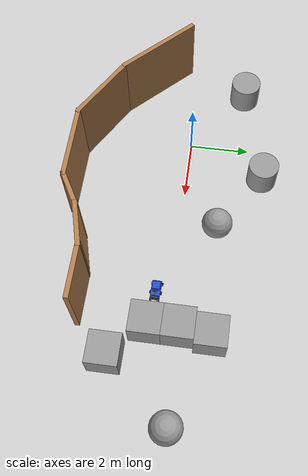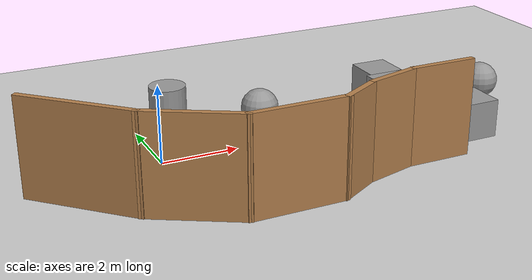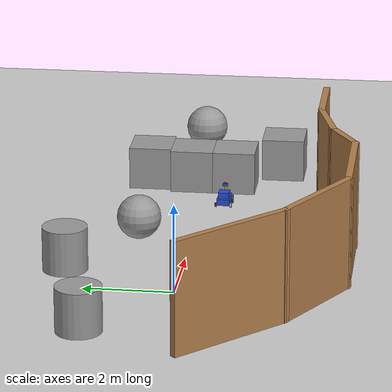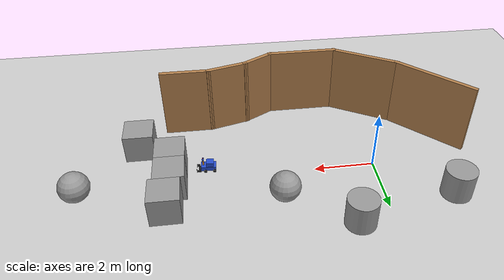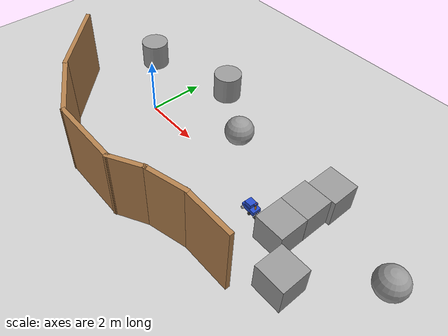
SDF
<sdf version="1.7">
 <world name="default">
  <light name="sun" type="directional">
   <pose>0 0 10 0 -0 0</pose>
   <diffuse>0.8 0.8 0.8 1</diffuse>
   <specular>0.2 0.2 0.2 1</specular>
   <attenuation>
    <range>1000</range>
    <constant>0.9</constant>
    <linear>0.01</linear>
    <quadratic>0.001</quadratic>
   </attenuation>
   <direction>-0.5 0.1 -0.9</direction>
   <spot><inner_angle>0</inner_angle><outer_angle>0</outer_angle><falloff>0</falloff></spot>
  </light>
  <model name="ground_plane">
   <static>1</static>
   <link name="link">
    <collision name="collision">
     <geometry><plane><normal>0 0 1</normal><size>100 100</size></plane></geometry>
     <surface>
      <contact><collide_bitmask>65535</collide_bitmask></contact>
      <friction><ode><mu>100</mu><mu2>50</mu2></ode></friction>
     </surface>
    </collision>
    <visual name="visual">
     <cast_shadows>0</cast_shadows>
     <geometry><plane><normal>0 0 1</normal><size>100 100</size></plane></geometry>
     <material>
      <script><uri>file://media/materials/scripts/gazebo.material</uri><name>Gazebo/Grey</name></script>
     </material>
    </visual>
   </link>
  </model>
  <gravity>0 0 -9.8</gravity>
  <magnetic_field>6e-06 2.3e-05 -4.2e-05</magnetic_field>
  <atmosphere type="adiabatic"/>
  <physics type="ode">
   <max_step_size>0.001</max_step_size>
   <real_time_factor>1</real_time_factor>
   <real_time_update_rate>1000</real_time_update_rate>
  </physics>
  <scene><ambient>0.4 0.4 0.4 1</ambient><background>0.7 0.7 0.7 1</background><shadows>1</shadows></scene>
  <audio><device>default</device></audio>
  <spherical_coordinates>
   <surface_model>EARTH_WGS84</surface_model>
   <latitude_deg>0</latitude_deg>
   <longitude_deg>0</longitude_deg>
   <elevation>0</elevation>
   <heading_deg>0</heading_deg>
  </spherical_coordinates>
  <model name="ros2_ws">
   <link name="base_link">
    <inertial>
     <pose>0.212828 4e-06 0.090281 0 -0 0</pose>
     <mass>13.112</mass>
     <inertia>
      <ixx>0.231664</ixx>
      <ixy>-1.16086e-05</ixy>
      <ixz>0.0239536</ixz>
      <iyy>0.312785</iyy>
      <iyz>2.01407e-06</iyz>
      <izz>0.366143</izz>
     </inertia>
    </inertial>
    <collision name="base_link_fixed_joint_lump__chassis_collision">
     <pose>0.2 0 0.075 0 -0 0</pose>
     <geometry><box><size>0.5 0.3 0.15</size></box></geometry>
    </collision>
    <collision name="base_link_fixed_joint_lump__back_collision_1">
     <pose>0.15 0 0.22 0 -0 0</pose>
     <geometry><box><size>0.25 0.25 0.14</size></box></geometry>
    </collision>
    <collision name="base_link_fixed_joint_lump__laser_framenew_collision_2">
     <pose>0.45 0 0.02 0 -0 0</pose>
     <geometry><cylinder><length>0.01</length><radius>0.01</radius></cylinder></geometry>
    </collision>
    <collision name="base_link_fixed_joint_lump__support_collision_3">
     <pose>0.37 0 0.16 0 -0 0</pose>
     <geometry><cylinder><length>0.02</length><radius>0.025</radius></cylinder></geometry>
    </collision>
    <collision name="base_link_fixed_joint_lump__support1_collision_4">
     <pose>0.37 0 0.26 0 -0 0</pose>
     <geometry><cylinder><length>0.18</length><radius>0.025</radius></cylinder></geometry>
    </collision>
    <collision name="base_link_fixed_joint_lump__box_collision_5">
     <pose>0.37 0 0.38 0 -0 0</pose>
     <geometry><box><size>0.06 0.12 0.06</size></box></geometry>
    </collision>
    <collision name="base_link_fixed_joint_lump__laser_frame_collision_6">
     <pose>0.37 0 0.42 0 -0 0</pose>
     <geometry><cylinder><length>0.02</length><radius>0.02</radius></cylinder></geometry>
    </collision>
    <collision name="base_link_fixed_joint_lump__vc2_collision_7">
     <pose>0.445 0.05 0.05 3.14159 1.57079 3.14159</pose>
     <geometry><cylinder><length>0.015</length><radius>0.03</radius></cylinder></geometry>
    </collision>
    <collision name="base_link_fixed_joint_lump__dum_left_wheel_collision_8">
     <pose>0.3 0.175 0 1.5708 -0 0</pose>
     <geometry><cylinder><length>0.04</length><radius>0.05</radius></cylinder></geometry>
     <surface><friction><ode><mu>0.001</mu><mu2>0.001</mu2></ode></friction></surface>
    </collision>
    <collision name="base_link_fixed_joint_lump__dum_right_wheel_collision_9">
     <pose>0.3 -0.175 0 1.5708 -0 0</pose>
     <geometry><cylinder><length>0.04</length><radius>0.05</radius></cylinder></geometry>
     <surface><friction><ode><mu>0.001</mu><mu2>0.001</mu2></ode></friction></surface>
    </collision>
    <visual name="base_link_fixed_joint_lump__chassis_visual">
     <pose>0.2 0 0.075 0 -0 0</pose>
     <geometry><box><size>0.5 0.3 0.15</size></box></geometry>
     <material>
      <script><name>Gazebo/Blue</name><uri>file://media/materials/scripts/gazebo.material</uri></script>
     </material>
    </visual>
    <visual name="base_link_fixed_joint_lump__back_visual_1">
     <pose>0.15 0 0.22 0 -0 0</pose>
     <geometry><box><size>0.25 0.25 0.14</size></box></geometry>
     <material>
      <script><name>Gazebo/Blue</name><uri>file://media/materials/scripts/gazebo.material</uri></script>
     </material>
    </visual>
    <visual name="base_link_fixed_joint_lump__laser_framenew_visual_2">
     <pose>0.45 0 0.02 0 -0 0</pose>
     <geometry><cylinder><length>0.01</length><radius>0.01</radius></cylinder></geometry>
     <material>
      <script><name>Gazebo/Red</name><uri>file://media/materials/scripts/gazebo.material</uri></script>
     </material>
    </visual>
    <visual name="base_link_fixed_joint_lump__support_visual_3">
     <pose>0.37 0 0.16 0 -0 0</pose>
     <geometry><cylinder><length>0.02</length><radius>0.025</radius></cylinder></geometry>
     <material>
      <script><name>Gazebo/Black</name><uri>file://media/materials/scripts/gazebo.material</uri></script>
     </material>
    </visual>
    <visual name="base_link_fixed_joint_lump__support1_visual_4">
     <pose>0.37 0 0.26 0 -0 0</pose>
     <geometry><cylinder><length>0.18</length><radius>0.025</radius></cylinder></geometry>
     <material>
      <script><name>Gazebo/Orange</name><uri>file://media/materials/scripts/gazebo.material</uri></script>
     </material>
    </visual>
    <visual name="base_link_fixed_joint_lump__box_visual_5">
     <pose>0.37 0 0.38 0 -0 0</pose>
     <geometry><box><size>0.06 0.12 0.06</size></box></geometry>
     <material>
      <script><name>Gazebo/Blue</name><uri>file://media/materials/scripts/gazebo.material</uri></script>
     </material>
    </visual>
    <visual name="base_link_fixed_joint_lump__face_link_visual_6">
     <pose>0.4 0.03 0.39 3.14159 1.57079 3.14159</pose>
     <geometry><cylinder><length>0.002</length><radius>0.01</radius></cylinder></geometry>
     <material>
      <script><name>Gazebo/Black</name><uri>file://media/materials/scripts/gazebo.material</uri></script>
     </material>
    </visual>
    <visual name="base_link_fixed_joint_lump__face_link_visual_7">
     <pose>0.4 -0.03 0.39 3.14159 1.57079 3.14159</pose>
     <geometry><cylinder><length>0.002</length><radius>0.01</radius></cylinder></geometry>
     <material>
      <script><name>Gazebo/Black</name><uri>file://media/materials/scripts/gazebo.material</uri></script>
     </material>
    </visual>
    <visual name="base_link_fixed_joint_lump__laser_frame_visual_8">
     <pose>0.37 0 0.42 0 -0 0</pose>
     <geometry><cylinder><length>0.02</length><radius>0.02</radius></cylinder></geometry>
     <material>
      <script><name>Gazebo/Red</name><uri>file://media/materials/scripts/gazebo.material</uri></script>
     </material>
    </visual>
    <visual name="base_link_fixed_joint_lump__camera_link_visual_9">
     <pose>0.37 0 0.43 0 -0 0</pose>
     <geometry><box><size>1e-05 1e-05 1e-05</size></box></geometry>
     <material>
      <script><name>Gazebo/Red</name><uri>file://media/materials/scripts/gazebo.material</uri></script>
     </material>
    </visual>
    <visual name="base_link_fixed_joint_lump__vc2_visual_10">
     <pose>0.445 0.05 0.05 3.14159 1.57079 3.14159</pose>
     <geometry><cylinder><length>0.015</length><radius>0.03</radius></cylinder></geometry>
     <material>
      <script><name>Gazebo/Black</name><uri>file://media/materials/scripts/gazebo.material</uri></script>
     </material>
    </visual>
    <visual name="base_link_fixed_joint_lump__dum_left_wheel_visual_11">
     <pose>0.3 0.175 0 1.5708 -0 0</pose>
     <geometry><cylinder><length>0.04</length><radius>0.05</radius></cylinder></geometry>
     <material>
      <script><name>Gazebo/Black</name><uri>file://media/materials/scripts/gazebo.material</uri></script>
     </material>
    </visual>
    <visual name="base_link_fixed_joint_lump__dum_right_wheel_visual_12">
     <pose>0.3 -0.175 0 1.5708 -0 0</pose>
     <geometry><cylinder><length>0.04</length><radius>0.05</radius></cylinder></geometry>
     <material>
      <script><name>Gazebo/Black</name><uri>file://media/materials/scripts/gazebo.material</uri></script>
     </material>
    </visual>
    <sensor name="laser" type="ray">
     <visualize>1</visualize>
     <update_rate>4</update_rate>
     <ray>
      <scan>
       <horizontal>
        <samples>10</samples>
        <min_angle>0</min_angle>
        <max_angle>0.1</max_angle>
        <resolution>1</resolution>
       </horizontal>
       <vertical><samples>1</samples><min_angle>0</min_angle><max_angle>0</max_angle></vertical>
      </scan>
      <range><min>0.15</min><max>12</max></range>
     </ray>
     <plugin name="laser_controller" filename="libgazebo_ros_ray_sensor.so">
      <ros><argument>~/out:=scan</argument></ros>
      <output_type>sensor_msgs/LaserScan</output_type>
      <frame_name>laser_frame</frame_name>
     </plugin>
     <pose>0.45 0 0.02 0 -0 0</pose>
    </sensor>
    <sensor name="camera1" type="multicamera">
     <update_rate>60</update_rate>
     <visualize>1</visualize>
     <camera name="left">
      <horizontal_fov>1.39626</horizontal_fov>
      <image><width>640</width><height>480</height><format>R8G8B8</format></image>
      <clip><near>0.02</near><far>300</far></clip>
      <noise><type>gaussian</type><mean>0</mean><stddev>0.007</stddev></noise>
     </camera>
     <camera name="right">
      <pose>0 0.4 0 0 -0 0</pose>
      <horizontal_fov>0.7</horizontal_fov>
      <image><width>320</width><height>480</height><format>R8G8B8</format></image>
      <clip><near>0.02</near><far>300</far></clip>
      <noise><type>gaussian</type><mean>0</mean><stddev>0.007</stddev></noise>
     </camera>
     <plugin name="camera_controller" filename="libgazebo_ros_camera.so">
      <ros>
       <namespace>demo_cam</namespace>
       <remapping>mycamera/left/image_raw:=mycamera/left/image_demo</remapping>
       <remapping>mycamera/right/image_raw:=mycamera/right/image_demo</remapping>
       <remapping>mycamera/left/camera_info:=mycamera/left/camera_info_demo</remapping>
       <remapping>mycamera/right/camera_info:=mycamera/right/camera_info_demo</remapping>
      </ros>
      <camera_name>mycamera</camera_name>
     </plugin>
     <pose>0.37 0 0.43 0 -0 0</pose>
    </sensor>
    <sensor name="camera" type="depth">
     <visualize>1</visualize>
     <update_rate>10</update_rate>
     <camera>
      <horizontal_fov>1.089</horizontal_fov>
      <image><format>B8G8R8</format><width>640</width><height>480</height></image>
      <clip><near>0.05</near><far>8</far></clip>
     </camera>
     <plugin name="camera_controller" filename="libgazebo_ros_camera.so">
      <frame_name>camera_link_optical</frame_name>
      <min_depth>0.1</min_depth>
      <max_depth>100.0</max_depth>
     </plugin>
     <pose>0.37 0 0.43 0 -0 0</pose>
    </sensor>
   </link>
   <joint name="lift_joint" type="prismatic">
    <pose relative_to="base_link">0.34 0 -0.0449 0 -0 0</pose>
    <parent>base_link</parent>
    <child>lift</child>
    <axis>
     <xyz>0 0 1</xyz>
     <limit><lower>0</lower><upper>0.11</upper><effort>100</effort><velocity>100</velocity></limit>
     <dynamics><spring_reference>0</spring_reference><spring_stiffness>0</spring_stiffness></dynamics>
    </axis>
   </joint>
   <link name="lift">
    <pose relative_to="lift_joint">0 0 0 0 -0 0</pose>
    <inertial>
     <pose>0.15 0 0.002 0 -0 0</pose>
     <mass>0.1</mass>
     <inertia>
      <ixx>0.000750208</ixx>
      <ixy>0</ixy>
      <ixz>0</ixz>
      <iyy>5.35417e-05</iyy>
      <iyz>0</iyz>
      <izz>0.000803333</izz>
     </inertia>
    </inertial>
    <collision name="lift_collision">
     <pose>0.15 0 0.005 0 -0 0</pose>
     <geometry><box><size>0.08 0.3 1e-05</size></box></geometry>
     <surface><friction><ode><mu>1e-05</mu><mu2>1e-05</mu2></ode></friction></surface>
    </collision>
    <visual name="lift_visual">
     <pose>0.15 0 0.002 0 -0 0</pose>
     <geometry><box><size>0.08 0.3 0.005</size></box></geometry>
     <material>
      <script><name>Gazebo/Black</name><uri>file://media/materials/scripts/gazebo.material</uri></script>
     </material>
    </visual>
   </link>
   <joint name="forkone_joint" type="prismatic">
    <pose relative_to="lift">0.05 -0.15 0.05 0 -0 0</pose>
    <parent>lift</parent>
    <child>forkone</child>
    <axis>
     <xyz>0 1 0</xyz>
     <limit><lower>0</lower><upper>0.085</upper><effort>1000</effort><velocity>10</velocity></limit>
     <dynamics><spring_reference>0</spring_reference><spring_stiffness>0</spring_stiffness></dynamics>
    </axis>
   </joint>
   <link name="forkone">
    <pose relative_to="forkone_joint">0 0 0 0 -0 0</pose>
    <inertial>
     <pose>0.175 0.0125 0.001 0 -0 0</pose>
     <mass>0.2</mass>
     <inertia>
      <ixx>0.00022895</ixx>
      <ixy>-6.25e-05</ixy>
      <ixz>5e-06</ixz>
      <iyy>0.000376033</iyy>
      <iyz>2.5e-06</iyz>
      <izz>0.00027125</izz>
     </inertia>
    </inertial>
    <collision name="forkone_collision">
     <pose>0.15 0 0.002 0 -0 0</pose>
     <geometry><box><size>0.1 0.01 0.1</size></box></geometry>
     <surface><friction><ode><mu>0.10001</mu><mu2>0.10001</mu2></ode></friction></surface>
    </collision>
    <collision name="forkone_fixed_joint_lump__cap1_collision_1">
     <pose>0.2 0.025 0 0 -0 0</pose>
     <geometry><box><size>0.01 0.06 0.1</size></box></geometry>
    </collision>
    <visual name="forkone_visual">
     <pose>0.15 0 0.002 0 -0 0</pose>
     <geometry><box><size>0.1 0.01 0.1</size></box></geometry>
     <material>
      <script><name>Gazebo/Black</name><uri>file://media/materials/scripts/gazebo.material</uri></script>
     </material>
    </visual>
    <visual name="forkone_fixed_joint_lump__cap1_visual_1">
     <pose>0.2 0.025 0 0 -0 0</pose>
     <geometry><box><size>0.01 0.06 0.1</size></box></geometry>
     <material>
      <script><name>Gazebo/Black</name><uri>file://media/materials/scripts/gazebo.material</uri></script>
     </material>
    </visual>
   </link>
   <joint name="forktwo_joint" type="prismatic">
    <pose relative_to="lift">0.05 0.15 0.05 0 -0 0</pose>
    <parent>lift</parent>
    <child>forktwo</child>
    <axis>
     <xyz>0 -1 0</xyz>
     <limit><lower>0</lower><upper>0.085</upper><effort>1000</effort><velocity>10</velocity></limit>
     <dynamics><spring_reference>0</spring_reference><spring_stiffness>0</spring_stiffness></dynamics>
    </axis>
   </joint>
   <link name="forktwo">
    <pose relative_to="forktwo_joint">0 0 0 0 -0 0</pose>
    <inertial>
     <pose>0.175 -0.0125 0.001 0 -0 0</pose>
     <mass>0.2</mass>
     <inertia>
      <ixx>0.000219783</ixx>
      <ixy>6.25e-05</ixy>
      <ixz>5e-06</ixz>
      <iyy>0.000376033</iyy>
      <iyz>-2.5e-06</iyz>
      <izz>0.000262083</izz>
     </inertia>
    </inertial>
    <collision name="forktwo_collision">
     <pose>0.15 0 0.002 0 -0 0</pose>
     <geometry><box><size>0.1 0.01 0.1</size></box></geometry>
     <surface><friction><ode><mu>0.10001</mu><mu2>0.10001</mu2></ode></friction></surface>
    </collision>
    <collision name="forktwo_fixed_joint_lump__cap_collision_1">
     <pose>0.2 -0.025 0 0 -0 0</pose>
     <geometry><box><size>0.01 0.06 0.1</size></box></geometry>
    </collision>
    <visual name="forktwo_visual">
     <pose>0.15 0 0.002 0 -0 0</pose>
     <geometry><box><size>0.1 0.01 0.1</size></box></geometry>
     <material>
      <script><name>Gazebo/Black</name><uri>file://media/materials/scripts/gazebo.material</uri></script>
     </material>
    </visual>
    <visual name="forktwo_fixed_joint_lump__cap_visual_1">
     <pose>0.2 -0.025 0 0 -0 0</pose>
     <geometry><box><size>0.01 0.06 0.1</size></box></geometry>
     <material>
      <script><name>Gazebo/Black</name><uri>file://media/materials/scripts/gazebo.material</uri></script>
     </material>
    </visual>
   </link>
   <joint name="vc1_joint" type="prismatic">
    <pose relative_to="base_link">0.445 -0.05 0.05 3.14159 1.57079 3.14159</pose>
    <parent>base_link</parent>
    <child>vc1</child>
    <axis>
     <xyz>0 1 0</xyz>
     <limit><lower>0</lower><upper>0</upper><effort>100</effort><velocity>10</velocity></limit>
     <dynamics><spring_reference>0</spring_reference><spring_stiffness>0</spring_stiffness></dynamics>
    </axis>
   </joint>
   <link name="vc1">
    <pose relative_to="vc1_joint">0 0 0 0 -0 0</pose>
    <inertial>
     <mass>0.001</mass>
     <inertia>
      <ixx>2.4375e-07</ixx>
      <ixy>0</ixy>
      <ixz>0</ixz>
      <iyy>2.4375e-07</iyy>
      <iyz>0</iyz>
      <izz>4.5e-07</izz>
     </inertia>
    </inertial>
    <collision name="vc1_collision">
     <geometry><cylinder><length>0.015</length><radius>0.03</radius></cylinder></geometry>
    </collision>
    <visual name="vc1_visual">
     <geometry><cylinder><length>0.015</length><radius>0.03</radius></cylinder></geometry>
     <material>
      <script><name>Gazebo/Black</name><uri>file://media/materials/scripts/gazebo.material</uri></script>
     </material>
    </visual>
   </link>
   <joint name="left_wheel_joint" type="revolute">
    <pose relative_to="base_link">0 0.175 0 -1.5708 0 0</pose>
    <parent>base_link</parent>
    <child>left_wheel</child>
    <axis>
     <xyz>0 0 1</xyz>
     <limit><lower>-1e+16</lower><upper>1e+16</upper></limit>
     <dynamics><spring_reference>0</spring_reference><spring_stiffness>0</spring_stiffness></dynamics>
    </axis>
   </joint>
   <link name="left_wheel">
    <pose relative_to="left_wheel_joint">0 0 0 0 -0 0</pose>
    <inertial>
     <mass>1.1</mass>
     <inertia>
      <ixx>0.000834167</ixx>
      <ixy>0</ixy>
      <ixz>0</ixz>
      <iyy>0.000834167</iyy>
      <iyz>0</iyz>
      <izz>0.001375</izz>
     </inertia>
    </inertial>
    <collision name="left_wheel_collision">
     <geometry><cylinder><length>0.04</length><radius>0.05</radius></cylinder></geometry>
    </collision>
    <visual name="left_wheel_visual">
     <geometry><cylinder><length>0.04</length><radius>0.05</radius></cylinder></geometry>
     <material>
      <script><name>Gazebo/Black</name><uri>file://media/materials/scripts/gazebo.material</uri></script>
     </material>
    </visual>
   </link>
   <joint name="right_wheel_joint" type="revolute">
    <pose relative_to="base_link">0 -0.175 0 1.5708 -0 0</pose>
    <parent>base_link</parent>
    <child>right_wheel</child>
    <axis>
     <xyz>0 0 -1</xyz>
     <limit><lower>-1e+16</lower><upper>1e+16</upper></limit>
     <dynamics><spring_reference>0</spring_reference><spring_stiffness>0</spring_stiffness></dynamics>
    </axis>
   </joint>
   <link name="right_wheel">
    <pose relative_to="right_wheel_joint">0 0 0 0 -0 0</pose>
    <inertial>
     <mass>1.1</mass>
     <inertia>
      <ixx>0.00190667</ixx>
      <ixy>0</ixy>
      <ixz>0</ixz>
      <iyy>0.00190667</iyy>
      <iyz>0</iyz>
      <izz>0.00352</izz>
     </inertia>
    </inertial>
    <collision name="right_wheel_collision">
     <geometry><cylinder><length>0.04</length><radius>0.05</radius></cylinder></geometry>
    </collision>
    <visual name="right_wheel_visual">
     <geometry><cylinder><length>0.04</length><radius>0.05</radius></cylinder></geometry>
    </visual>
   </link>
   <plugin name="gazebo_ros_joint_pose_trajectory" filename="libgazebo_ros_joint_pose_trajectory.so">
    <ros><namespace>/vision</namespace><remapping>set_joint_trajectory:=set_trajectory_demo</remapping></ros>
    <update_rate>2</update_rate>
   </plugin>
   <plugin name="vacuum_gripper" filename="libgazebo_ros_vacuum_gripper.so">
    <ros>
     <namespace>/demo</namespace>
     <remapping>switch:=switch_demo</remapping>
     <remapping>grasping:=grasping_demo</remapping>
    </ros>
    <link_name>vc1</link_name>
    <max_distance>0.8</max_distance>
    <fixed>base_link</fixed>
   </plugin>
   <plugin name="vacuum_gripper" filename="libgazebo_ros_vacuum_gripper.so">
    <ros>
     <namespace>/demo1</namespace>
     <remapping>switch:=switch_demo</remapping>
     <remapping>grasping:=grasping_demo</remapping>
    </ros>
    <link_name>vc2</link_name>
    <max_distance>0.8</max_distance>
    <fixed>base_link</fixed>
   </plugin>
   <plugin name="vacuum_gripper" filename="libgazebo_ros_vacuum_gripper.so">
    <ros>
     <namespace>/fork</namespace>
     <remapping>switch:=switch_demo</remapping>
     <remapping>grasping:=grasping_demo</remapping>
    </ros>
    <link_name>forkone</link_name>
    <max_distance>0.1</max_distance>
    <fixed>base_link</fixed>
   </plugin>
   <static>0</static>
   <plugin name="gazebo_ros2_control" filename="libgazebo_ros2_control.so">
    <parameters>/home/dhanush/Desktop/ros2_ws/install/vision/share/vision/config/my_controllers.yaml</parameters>
   </plugin>
   <pose>5.35873 -0.472058 0.05 -0 1e-06 -0.043345</pose>
  </model>
  <model name="Untitled">
   <pose>1.79299 -1.87135 0 0 -0 0</pose>
   <link name="Wall_10">
    <collision name="Wall_10_Collision">
     <geometry><box><size>1.25 0.15 2.5</size></box></geometry>
     <pose>0 0 1.25 0 -0 0</pose>
    </collision>
    <visual name="Wall_10_Visual">
     <pose>0 0 1.25 0 -0 0</pose>
     <geometry><box><size>1.25 0.15 2.5</size></box></geometry>
     <material>
      <script><uri>file://media/materials/scripts/gazebo.material</uri><name>Gazebo/Wood</name></script>
      <ambient>1 1 1 1</ambient>
     </material>
     <meta><layer>0</layer></meta>
    </visual>
    <pose>1.76374 -1.4939 0 0 -0 0.523599</pose>
   </link>
   <link name="Wall_11">
    <collision name="Wall_11_Collision">
     <geometry><box><size>1.5 0.15 2.5</size></box></geometry>
     <pose>0 0 1.25 0 -0 0</pose>
    </collision>
    <visual name="Wall_11_Visual">
     <pose>0 0 1.25 0 -0 0</pose>
     <geometry><box><size>1.5 0.15 2.5</size></box></geometry>
     <material>
      <script><uri>file://media/materials/scripts/gazebo.material</uri><name>Gazebo/Wood</name></script>
      <ambient>1 1 1 1</ambient>
     </material>
     <meta><layer>0</layer></meta>
    </visual>
    <pose>2.89205 -1.0442 0 0 -0 0.261799</pose>
   </link>
   <link name="Wall_12">
    <collision name="Wall_12_Collision">
     <geometry><box><size>1.75 0.15 2.5</size></box></geometry>
     <pose>0 0 1.25 0 -0 0</pose>
    </collision>
    <visual name="Wall_12_Visual">
     <pose>0 0 1.25 0 -0 0</pose>
     <geometry><box><size>1.75 0.15 2.5</size></box></geometry>
     <material>
      <script><uri>file://media/materials/scripts/gazebo.material</uri><name>Gazebo/Wood</name></script>
      <ambient>1 1 1 1</ambient>
     </material>
     <meta><layer>0</layer></meta>
    </visual>
    <pose>4.34405 -0.869495 0 0 -0 0</pose>
   </link>
   <link name="Wall_7">
    <collision name="Wall_7_Collision">
     <geometry><box><size>3 0.15 2.5</size></box></geometry>
     <pose>0 0 1.25 0 -0 0</pose>
    </collision>
    <visual name="Wall_7_Visual">
     <pose>0 0 1.25 0 -0 0</pose>
     <geometry><box><size>3 0.15 2.5</size></box></geometry>
     <material>
      <script><uri>file://media/materials/scripts/gazebo.material</uri><name>Gazebo/Wood</name></script>
      <ambient>1 1 1 1</ambient>
     </material>
     <meta><layer>0</layer></meta>
    </visual>
    <pose>-4.10536 0.413726 0 0 -0 -0.785398</pose>
   </link>
   <link name="Wall_8">
    <collision name="Wall_8_Collision">
     <geometry><box><size>2.5 0.15 2.5</size></box></geometry>
     <pose>0 0 1.25 0 -0 0</pose>
    </collision>
    <visual name="Wall_8_Visual">
     <pose>0 0 1.25 0 -0 0</pose>
     <geometry><box><size>2.5 0.15 2.5</size></box></geometry>
     <material>
      <script><uri>file://media/materials/scripts/gazebo.material</uri><name>Gazebo/Wood</name></script>
      <ambient>1 1 1 1</ambient>
     </material>
     <meta><layer>0</layer></meta>
    </visual>
    <pose>-2.08015 -1.1814 0 0 -0 -0.523599</pose>
   </link>
   <link name="Wall_9">
    <collision name="Wall_9_Collision">
     <geometry><box><size>2.5 0.15 2.5</size></box></geometry>
     <pose>0 0 1.25 0 -0 0</pose>
    </collision>
    <visual name="Wall_9_Visual">
     <pose>0 0 1.25 0 -0 0</pose>
     <geometry><box><size>2.5 0.15 2.5</size></box></geometry>
     <material>
      <script><uri>file://media/materials/scripts/gazebo.material</uri><name>Gazebo/Wood</name></script>
      <ambient>1 1 1 1</ambient>
     </material>
     <meta><layer>0</layer></meta>
    </visual>
    <pose>0.112426 -1.7689 0 0 -0 0</pose>
   </link>
   <static>1</static>
  </model>
  <model name="unit_box">
   <pose>6.78251 0.385019 0.5 0 -0 -0.000671</pose>
   <link name="link">
    <inertial>
     <mass>1</mass>
     <inertia>
      <ixx>0.166667</ixx>
      <ixy>0</ixy>
      <ixz>0</ixz>
      <iyy>0.166667</iyy>
      <iyz>0</iyz>
      <izz>0.166667</izz>
     </inertia>
    </inertial>
    <collision name="collision"><geometry><box><size>1 1 1</size></box></geometry></collision>
    <visual name="visual">
     <geometry><box><size>1 1 1</size></box></geometry>
     <material>
      <script><name>Gazebo/Grey</name><uri>file://media/materials/scripts/gazebo.material</uri></script>
     </material>
    </visual>
   </link>
  </model>
  <model name="unit_box_0">
   <pose>6.91179 1.38536 0.5 0 0 -8.9e-05</pose>
   <link name="link">
    <inertial>
     <mass>1</mass>
     <inertia>
      <ixx>0.166667</ixx>
      <ixy>0</ixy>
      <ixz>0</ixz>
      <iyy>0.166667</iyy>
      <iyz>0</iyz>
      <izz>0.166667</izz>
     </inertia>
    </inertial>
    <collision name="collision"><geometry><box><size>1 1 1</size></box></geometry></collision>
    <visual name="visual">
     <geometry><box><size>1 1 1</size></box></geometry>
     <material>
      <script><name>Gazebo/Grey</name><uri>file://media/materials/scripts/gazebo.material</uri></script>
     </material>
    </visual>
   </link>
  </model>
  <model name="unit_box_1">
   <pose>6.7803 -0.615032 0.499995 0 -1e-05 -0.000686</pose>
   <link name="link">
    <inertial>
     <mass>1</mass>
     <inertia>
      <ixx>0.166667</ixx>
      <ixy>0</ixy>
      <ixz>0</ixz>
      <iyy>0.166667</iyy>
      <iyz>0</iyz>
      <izz>0.166667</izz>
     </inertia>
    </inertial>
    <collision name="collision"><geometry><box><size>1 1 1</size></box></geometry></collision>
    <visual name="visual">
     <geometry><box><size>1 1 1</size></box></geometry>
     <material>
      <script><name>Gazebo/Grey</name><uri>file://media/materials/scripts/gazebo.material</uri></script>
     </material>
    </visual>
   </link>
  </model>
  <model name="unit_box_2">
   <pose>7.85208 -1.69419 0.499995 0 1e-05 0</pose>
   <link name="link">
    <inertial>
     <mass>1</mass>
     <inertia>
      <ixx>0.166667</ixx>
      <ixy>0</ixy>
      <ixz>0</ixz>
      <iyy>0.166667</iyy>
      <iyz>0</iyz>
      <izz>0.166667</izz>
     </inertia>
    </inertial>
    <collision name="collision"><geometry><box><size>1 1 1</size></box></geometry></collision>
    <visual name="visual">
     <geometry><box><size>1 1 1</size></box></geometry>
     <material>
      <script><name>Gazebo/Grey</name><uri>file://media/materials/scripts/gazebo.material</uri></script>
     </material>
    </visual>
   </link>
  </model>
  <model name="unit_cylinder">
   <pose>1.09593 2.54085 0.499993 -3e-06 -3e-06 0</pose>
   <link name="link">
    <inertial>
     <mass>1</mass>
     <inertia><ixx>0.145833</ixx><ixy>0</ixy><ixz>0</ixz><iyy>0.145833</iyy><iyz>0</iyz><izz>0.125</izz></inertia>
    </inertial>
    <collision name="collision">
     <geometry><cylinder><radius>0.5</radius><length>1</length></cylinder></geometry>
    </collision>
    <visual name="visual">
     <geometry><cylinder><radius>0.5</radius><length>1</length></cylinder></geometry>
     <material>
      <script><name>Gazebo/Grey</name><uri>file://media/materials/scripts/gazebo.material</uri></script>
     </material>
    </visual>
   </link>
  </model>
  <model name="unit_sphere">
   <pose>3.19191 1.20086 0.5 0 -0 0</pose>
   <link name="link">
    <inertial>
     <mass>1</mass>
     <inertia><ixx>0.1</ixx><ixy>0</ixy><ixz>0</ixz><iyy>0.1</iyy><iyz>0</iyz><izz>0.1</izz></inertia>
    </inertial>
    <collision name="collision"><geometry><sphere><radius>0.5</radius></sphere></geometry></collision>
    <visual name="visual">
     <geometry><sphere><radius>0.5</radius></sphere></geometry>
     <material>
      <script><name>Gazebo/Grey</name><uri>file://media/materials/scripts/gazebo.material</uri></script>
     </material>
    </visual>
   </link>
  </model>
  <model name="unit_cylinder_0">
   <pose>-2.26735 1.69363 0.499993 -3e-06 -4e-06 -0</pose>
   <link name="link">
    <inertial>
     <mass>1</mass>
     <inertia><ixx>0.145833</ixx><ixy>0</ixy><ixz>0</ixz><iyy>0.145833</iyy><iyz>0</iyz><izz>0.125</izz></inertia>
    </inertial>
    <collision name="collision">
     <geometry><cylinder><radius>0.5</radius><length>1</length></cylinder></geometry>
    </collision>
    <visual name="visual">
     <geometry><cylinder><radius>0.5</radius><length>1</length></cylinder></geometry>
     <material>
      <script><name>Gazebo/Grey</name><uri>file://media/materials/scripts/gazebo.material</uri></script>
     </material>
    </visual>
   </link>
  </model>
  <model name="unit_sphere_0">
   <pose>9.74888 0.399059 0.5 0 -0 0</pose>
   <link name="link">
    <inertial>
     <mass>1</mass>
     <inertia><ixx>0.1</ixx><ixy>0</ixy><ixz>0</ixz><iyy>0.1</iyy><iyz>0</iyz><izz>0.1</izz></inertia>
    </inertial>
    <collision name="collision"><geometry><sphere><radius>0.5</radius></sphere></geometry></collision>
    <visual name="visual">
     <geometry><sphere><radius>0.5</radius></sphere></geometry>
     <material>
      <script><name>Gazebo/Grey</name><uri>file://media/materials/scripts/gazebo.material</uri></script>
     </material>
    </visual>
   </link>
  </model>
 </world>
</sdf>
